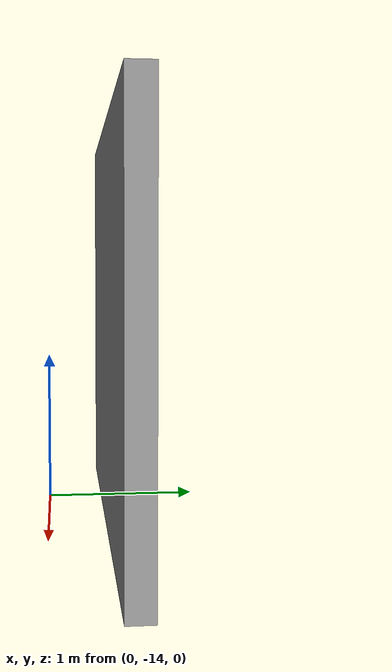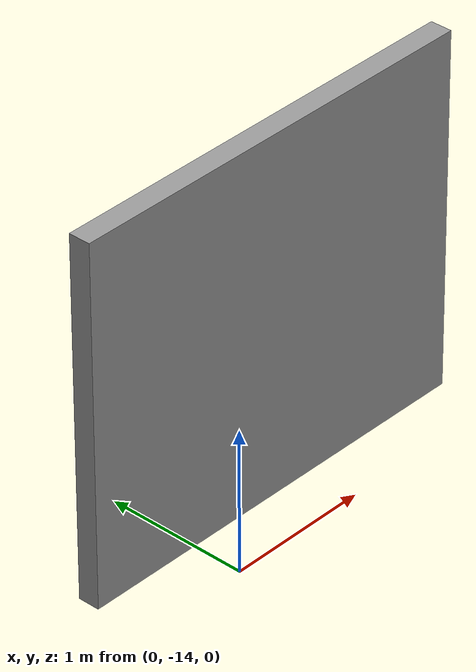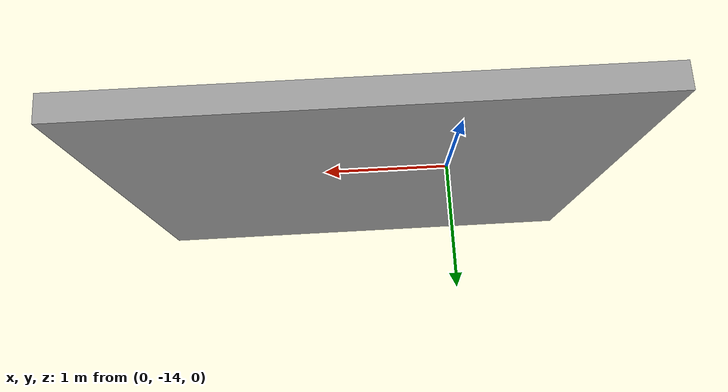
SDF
<?xml version='1.0'?>
<sdf version='1.6'>
  <model name='wall_3m'>
    <pose frame=''>0.69974 -6.82138 0 0 -0 0</pose>
    <link name='Wall_34'>
      <collision name='Wall_34_Collision'>
        <geometry>
          <box>
            <size>3 0.15 2.5</size>
          </box>
        </geometry>
        <pose frame=''>0 0 1.25 0 -0 0</pose>
      </collision>
      <visual name='Wall_34_Visual'>
        <pose frame=''>0 0 1.25 0 -0 0</pose>
        <geometry>
          <box>
            <size>3 0.15 2.5</size>
          </box>
        </geometry>
        <material>
          <script>
            <uri>file://media/materials/scripts/gazebo.material</uri>
            <name>Gazebo/Grey</name>
          </script>
          <ambient>1 1 1 1</ambient>
        </material>
        <meta>
          <layer>0</layer>
        </meta>
      </visual>
      <pose frame=''>-0 -6.74638 0 0 -0 0</pose>
    </link>
    <static>1</static>
  </model>
</sdf>
